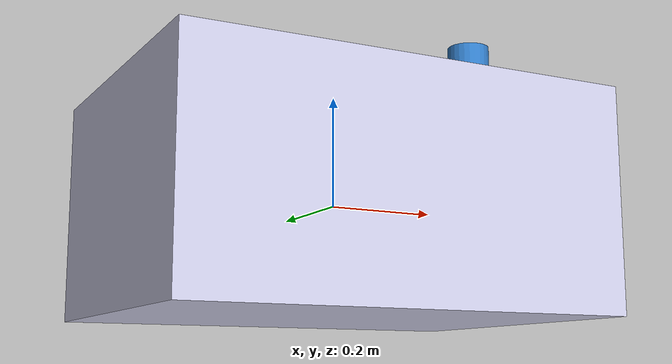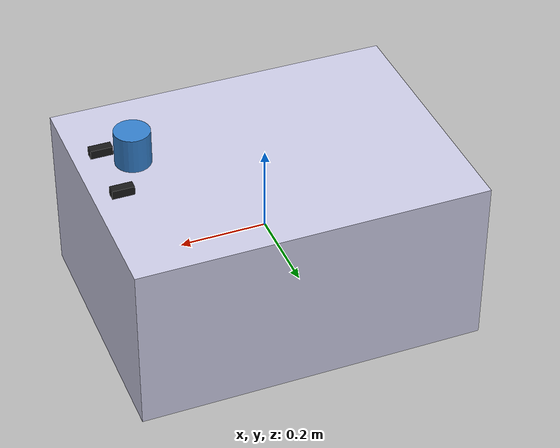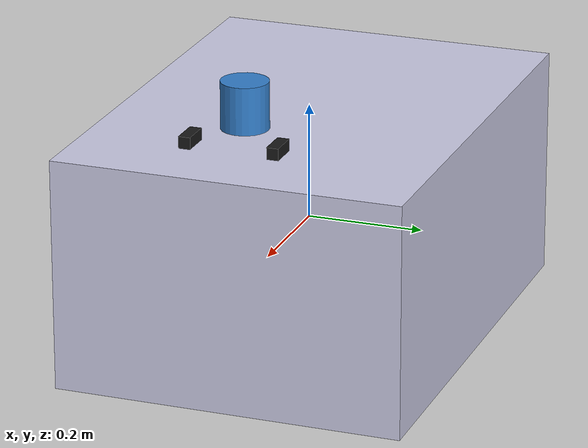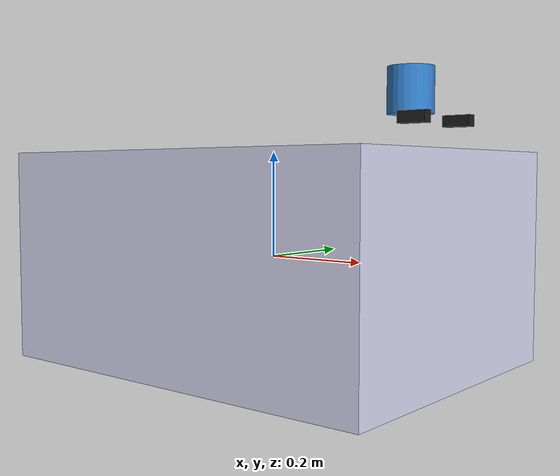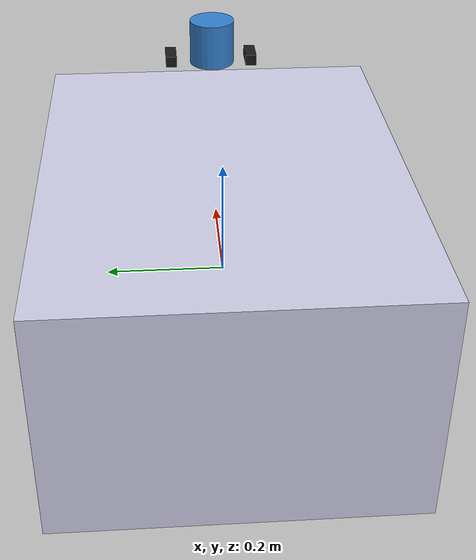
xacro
<?xml version="1.0"?>
<!-- About: Lunar Rover URDF/Xacro
     Differential drive rover with LiDAR, stereo camera, and IMU
     Designed for Gazebo Harmonic simulation -->
<robot xmlns:xacro="http://www.ros.org/wiki/xacro" name="lunar_rover">

  <!-- About: Rover Dimensions -->
  <xacro:property name="rover_length" value="0.8"/>
  <xacro:property name="rover_width" value="0.6"/>
  <xacro:property name="rover_height" value="0.4"/>
  <xacro:property name="wheel_radius" value="0.1"/>
  <xacro:property name="wheel_width" value="0.08"/>
  <xacro:property name="wheel_separation" value="0.5"/>
  <xacro:property name="wheel_mass" value="0.5"/>
  <xacro:property name="body_mass" value="5.0"/>

  <!-- About: Base Link -->
  <link name="base_link">
    <visual>
      <geometry>
        <box size="${rover_length} ${rover_width} ${rover_height}"/>
      </geometry>
      <material name="aluminum">
        <color rgba="0.8 0.8 0.9 1.0"/>
      </material>
    </visual>
    <collision>
      <geometry>
        <box size="${rover_length} ${rover_width} ${rover_height}"/>
      </geometry>
    </collision>
    <inertial>
      <mass value="${body_mass}"/>
      <inertia ixx="0.1" ixy="0.0" ixz="0.0"
               iyy="0.1" iyz="0.0"
               izz="0.1"/>
    </inertial>
  </link>

  <!-- About: Left Wheel -->
  <link name="left_wheel">
    <visual>
      <geometry>
        <cylinder radius="${wheel_radius}" length="${wheel_width}"/>
      </geometry>
      <material name="black">
        <color rgba="0.1 0.1 0.1 1.0"/>
      </material>
    </visual>
    <collision>
      <geometry>
        <cylinder radius="${wheel_radius}" length="${wheel_width}"/>
      </geometry>
    </collision>
    <inertial>
      <mass value="${wheel_mass}"/>
      <inertia ixx="0.01" ixy="0.0" ixz="0.0"
               iyy="0.01" iyz="0.0"
               izz="0.01"/>
    </inertial>
  </link>

  <joint name="left_wheel_joint" type="continuous">
    <parent link="base_link"/>
    <child link="left_wheel"/>
    <origin xyz="0 ${wheel_separation/2} ${-wheel_radius}" rpy="${pi/2} 0 0"/>
    <axis xyz="0 0 1"/>
  </joint>

  <!-- About: Right Wheel -->
  <link name="right_wheel">
    <visual>
      <geometry>
        <cylinder radius="${wheel_radius}" length="${wheel_width}"/>
      </geometry>
      <material name="black">
        <color rgba="0.1 0.1 0.1 1.0"/>
      </material>
    </visual>
    <collision>
      <geometry>
        <cylinder radius="${wheel_radius}" length="${wheel_width}"/>
      </geometry>
    </collision>
    <inertial>
      <mass value="${wheel_mass}"/>
      <inertia ixx="0.01" ixy="0.0" ixz="0.0"
               iyy="0.01" iyz="0.0"
               izz="0.01"/>
    </inertial>
  </link>

  <joint name="right_wheel_joint" type="continuous">
    <parent link="base_link"/>
    <child link="right_wheel"/>
    <origin xyz="0 ${-wheel_separation/2} ${-wheel_radius}" rpy="${pi/2} 0 0"/>
    <axis xyz="0 0 1"/>
  </joint>

  <!-- About: LiDAR Mount -->
  <link name="lidar_link">
    <visual>
      <geometry>
        <cylinder radius="0.04" length="0.08"/>
      </geometry>
      <material name="sensor">
        <color rgba="0.2 0.5 0.8 1.0"/>
      </material>
    </visual>
  </link>

  <joint name="lidar_joint" type="fixed">
    <parent link="base_link"/>
    <child link="lidar_link"/>
    <origin xyz="0.3 0 0.3" rpy="0 0 0"/>
  </joint>

  <!-- About: Left Camera -->
  <link name="left_camera_link">
    <visual>
      <geometry>
        <box size="0.05 0.02 0.02"/>
      </geometry>
      <material name="camera">
        <color rgba="0.1 0.1 0.1 1.0"/>
      </material>
    </visual>
  </link>

  <joint name="left_camera_joint" type="fixed">
    <parent link="base_link"/>
    <child link="left_camera_link"/>
    <origin xyz="0.35 0.075 0.25" rpy="0 0 0"/>
  </joint>

  <!-- About: Right Camera -->
  <link name="right_camera_link">
    <visual>
      <geometry>
        <box size="0.05 0.02 0.02"/>
      </geometry>
      <material name="camera">
        <color rgba="0.1 0.1 0.1 1.0"/>
      </material>
    </visual>
  </link>

  <joint name="right_camera_joint" type="fixed">
    <parent link="base_link"/>
    <child link="right_camera_link"/>
    <origin xyz="0.35 -0.075 0.25" rpy="0 0 0"/>
  </joint>

  <!-- About: IMU Mount -->
  <link name="imu_link">
    <visual>
      <geometry>
        <box size="0.03 0.03 0.01"/>
      </geometry>
      <material name="sensor">
        <color rgba="0.2 0.5 0.8 1.0"/>
      </material>
    </visual>
  </link>

  <joint name="imu_joint" type="fixed">
    <parent link="base_link"/>
    <child link="imu_link"/>
    <origin xyz="0 0 0.1" rpy="0 0 0"/>
  </joint>

  <!-- About: Gazebo Plugins -->
  <gazebo>
    <!-- Differential Drive Plugin -->
    <plugin name="diff_drive" filename="libgz_ros2_control-system">
      <parameters>
        $(find gazebo_lunar_sim)/config/diff_drive_controller.yaml
      </parameters>
    </plugin>

    <!-- LiDAR Plugin -->
    <plugin name="lidar" filename="libgazebo_ros_lidar">
      <topic>/lidar/points</topic>
      <update_rate>10</update_rate>
      <ray>
        <scan>
          <horizontal>
            <samples>3600</samples>
            <resolution>1</resolution>
            <min_angle>-3.14159</min_angle>
            <max_angle>3.14159</max_angle>
          </horizontal>
          <vertical>
            <samples>590</samples>
            <resolution>1</resolution>
            <min_angle>-0.5149</min_angle>
            <max_angle>0.5149</max_angle>
          </vertical>
        </scan>
        <range>
          <min>0.1</min>
          <max>100.0</max>
        </range>
      </ray>
    </plugin>

    <!-- Stereo Camera Plugin -->
    <plugin name="stereo_camera" filename="libgazebo_ros_camera">
      <camera_name>stereo</camera_name>
      <image_topic>image_raw</image_topic>
      <camera_info_topic>camera_info</camera_info_topic>
      <update_rate>20</update_rate>
      <horizontal_fov>1.047</horizontal_fov>
      <image>
        <width>1280</width>
        <height>720</height>
      </image>
    </plugin>

    <!-- IMU Plugin -->
    <plugin name="imu" filename="libgazebo_ros_imu_sensor">
      <topic>/imu/data</topic>
      <update_rate>200</update_rate>
      <imu>
        <angular_velocity_stddev>0.02</angular_velocity_stddev>
        <linear_acceleration_stddev>0.002</linear_acceleration_stddev>
      </imu>
    </plugin>
  </gazebo>

  <!-- About: ROS 2 Control -->
  <ros2_control name="GazeboSystem" type="system">
    <hardware>
      <plugin>gz_ros2_control/GazeboSimSystem</plugin>
    </hardware>
    <joint name="left_wheel_joint">
      <command_interface name="velocity"/>
      <state_interface name="position"/>
      <state_interface name="velocity"/>
    </joint>
    <joint name="right_wheel_joint">
      <command_interface name="velocity"/>
      <state_interface name="position"/>
      <state_interface name="velocity"/>
    </joint>
  </ros2_control>

</robot>
